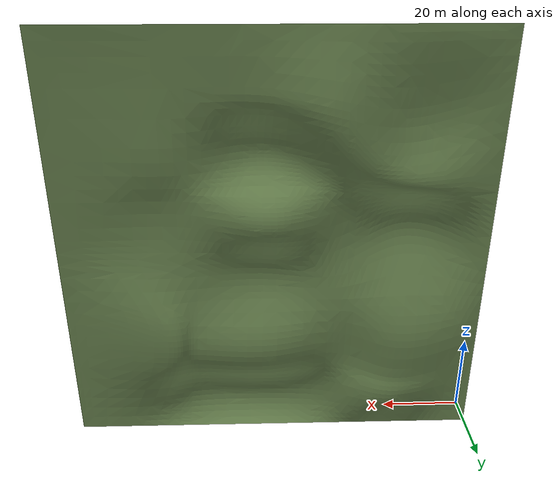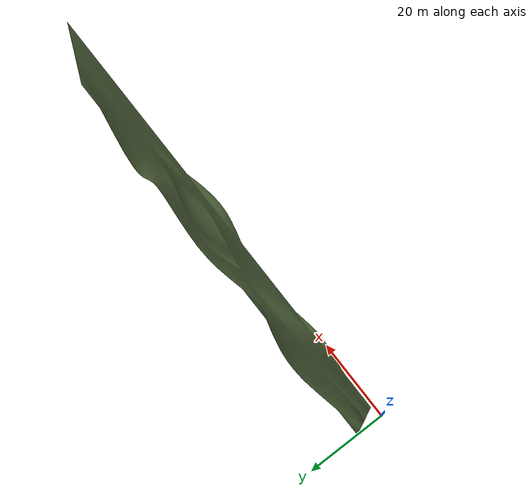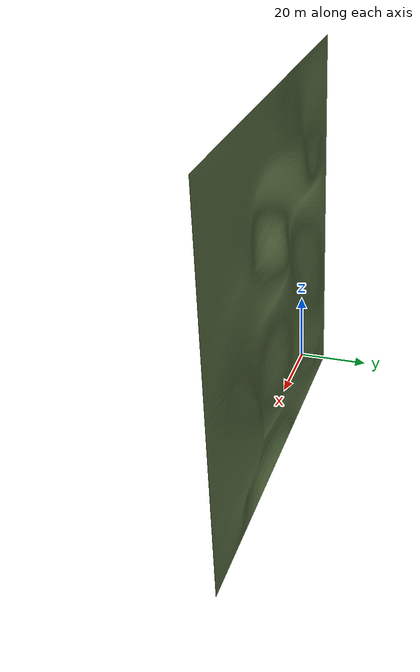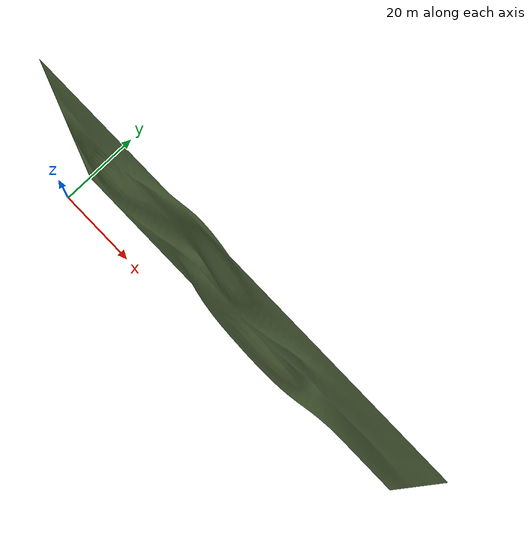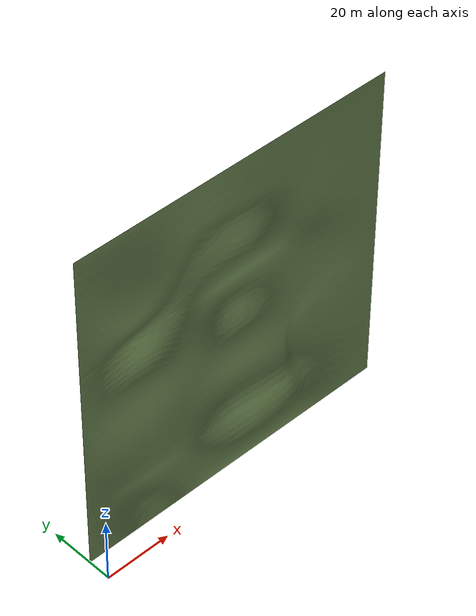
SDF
<?xml version="1.0" ?>
<!--
  Swarm Digital Twin - Terrain World
  Based on Valencia et al. (2025) pipeline: SRTM -> BlenderGIS -> STL -> Gazebo.
  Replace the heightmap/STL paths with your own terrain data.
-->
<sdf version="1.6">
  <world name="swarm_dt_terrain">

    <!-- Physics engine -->
    <physics type="ode">
      <max_step_size>0.004</max_step_size>
      <real_time_factor>1.0</real_time_factor>
      <real_time_update_rate>250</real_time_update_rate>
    </physics>

    <!-- Lighting -->
    <include>
      <uri>model://sun</uri>
    </include>

    <!-- Atmosphere (high altitude example: Andean mountains ~4500m) -->
    <atmosphere type="adiabatic">
      <temperature>258.15</temperature>
      <pressure>57730</pressure>
    </atmosphere>

    <!-- Terrain mesh (replace with your STL from BlenderGIS) -->
    <model name="terrain">
      <static>true</static>
      <link name="terrain_link">
        <collision name="terrain_collision">
          <geometry>
            <mesh>
              <uri>model://terrain/meshes/terrain.stl</uri>
              <scale>1 1 1</scale>
            </mesh>
          </geometry>
        </collision>
        <visual name="terrain_visual">
          <geometry>
            <mesh>
              <uri>model://terrain/meshes/terrain.stl</uri>
              <scale>1 1 1</scale>
            </mesh>
          </geometry>
          <material>
            <ambient>0.3 0.4 0.2 1</ambient>
            <diffuse>0.4 0.5 0.3 1</diffuse>
          </material>
        </visual>
      </link>
    </model>

    <!-- Wind plugin (publishes wind forces to ROS topic) -->
    <plugin name="wind" filename="libgazebo_wind_plugin.so">
      <frameId>world</frameId>
      <windDirectionMean>1 0 0</windDirectionMean>
      <windVelocityMean>5.0</windVelocityMean>
      <windGustDirection>0 1 0</windGustDirection>
      <windGustDuration>2.0</windGustDuration>
      <windGustStart>10.0</windGustStart>
      <windGustForceMean>10.0</windGustForceMean>
    </plugin>

    <spherical_coordinates>
      <surface_model>EARTH_WGS84</surface_model>
      <latitude_deg>-1.2921</latitude_deg>
      <longitude_deg>-78.5920</longitude_deg>
      <elevation>4500</elevation>
      <heading_deg>0</heading_deg>
    </spherical_coordinates>

  </world>
</sdf>
